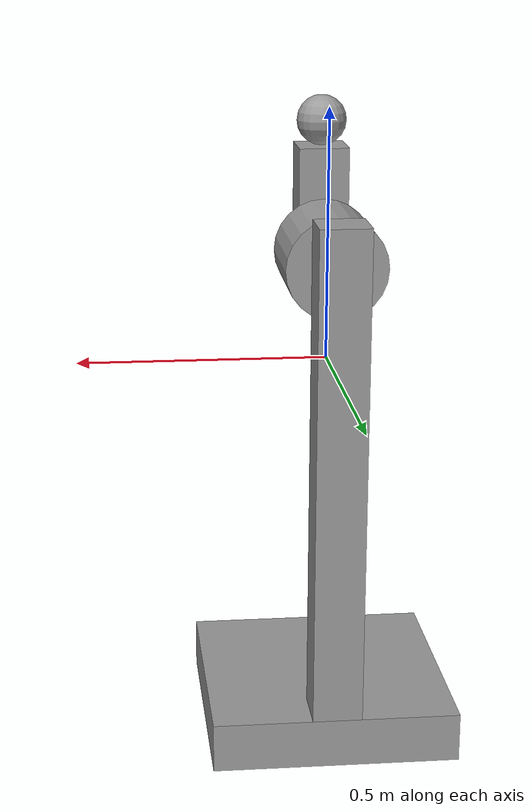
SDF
<?xml version='1.0'?>
<sdf version='1.6'>
  <model name='my_manipulator'>
    <link name='link_6'>
      <pose frame=''>0 0.19001 -0.18999 0 -0 0</pose>
      <inertial>
        <mass>1</mass>
        <inertia>
          <ixx>0.166667</ixx>
          <ixy>0</ixy>
          <ixz>0</ixz>
          <iyy>0.166667</iyy>
          <iyz>0</iyz>
          <izz>0.166667</izz>
        </inertia>
        <pose frame=''>0 0 0 0 -0 0</pose>
      </inertial>
      <gravity>1</gravity>
      <self_collide>0</self_collide>
      <kinematic>0</kinematic>
      <visual name='visual'>
        <pose frame=''>0 0 0 0 -0 0</pose>
        <geometry>
          <box>
            <size>0.1 0.1 1</size>
          </box>
        </geometry>
        <material>
          <lighting>1</lighting>
          <script>
            <uri>file://media/materials/scripts/gazebo.material</uri>
            <name>Gazebo/Grey</name>
          </script>
          <ambient>0.3 0.3 0.3 1</ambient>
          <diffuse>0.7 0.7 0.7 1</diffuse>
          <specular>0.01 0.01 0.01 1</specular>
          <emissive>0 0 0 1</emissive>
          <shader type='vertex'>
            <normal_map>__default__</normal_map>
          </shader>
        </material>
        <cast_shadows>1</cast_shadows>
        <transparency>0</transparency>
      </visual>
      <visual name='ModelPreview_3::link_6::visual_1'>
        <pose frame=''>0 0 0 0 -0 0</pose>
        <geometry>
          <box>
            <size>0.1 0.1 1</size>
          </box>
        </geometry>
        <material>
          <lighting>1</lighting>
          <script>
            <uri>file://media/materials/scripts/gazebo.material</uri>
            <name>Gazebo/Grey</name>
          </script>
          <ambient>0.3 0.3 0.3 1</ambient>
          <diffuse>0.7 0.7 0.7 1</diffuse>
          <specular>0.01 0.01 0.01 1</specular>
          <emissive>0 0 0 1</emissive>
          <shader type='vertex'>
            <normal_map>__default__</normal_map>
          </shader>
        </material>
        <cast_shadows>1</cast_shadows>
        <transparency>0</transparency>
      </visual>
      <collision name='collision'>
        <laser_retro>0</laser_retro>
        <max_contacts>10</max_contacts>
        <pose frame=''>0 0 0 0 -0 0</pose>
        <geometry>
          <box>
            <size>0.1 0.1 1</size>
          </box>
        </geometry>
        <surface>
          <friction>
            <ode>
              <mu>1</mu>
              <mu2>1</mu2>
              <fdir1>0 0 0</fdir1>
              <slip1>0</slip1>
              <slip2>0</slip2>
            </ode>
            <torsional>
              <coefficient>1</coefficient>
              <patch_radius>0</patch_radius>
              <surface_radius>0</surface_radius>
              <use_patch_radius>1</use_patch_radius>
              <ode>
                <slip>0</slip>
              </ode>
            </torsional>
          </friction>
          <bounce>
            <restitution_coefficient>0</restitution_coefficient>
            <threshold>1e+06</threshold>
          </bounce>
          <contact>
            <collide_without_contact>0</collide_without_contact>
            <collide_without_contact_bitmask>1</collide_without_contact_bitmask>
            <collide_bitmask>1</collide_bitmask>
            <ode>
              <soft_cfm>0</soft_cfm>
              <soft_erp>0.2</soft_erp>
              <kp>1e+13</kp>
              <kd>1</kd>
              <max_vel>0.01</max_vel>
              <min_depth>0</min_depth>
            </ode>
            <bullet>
              <split_impulse>1</split_impulse>
              <split_impulse_penetration_threshold>-0.01</split_impulse_penetration_threshold>
              <soft_cfm>0</soft_cfm>
              <soft_erp>0.2</soft_erp>
              <kp>1e+13</kp>
              <kd>1</kd>
            </bullet>
          </contact>
        </surface>
      </collision>
    </link>
    <link name='link_6_clone'>
      <pose frame=''>0 -0.11001 0.259991 0 -0 0</pose>
      <inertial>
        <mass>1</mass>
        <inertia>
          <ixx>0.166667</ixx>
          <ixy>0</ixy>
          <ixz>0</ixz>
          <iyy>0.166667</iyy>
          <iyz>0</iyz>
          <izz>0.166667</izz>
        </inertia>
        <pose frame=''>0 0 0 0 -0 0</pose>
      </inertial>
      <self_collide>0</self_collide>
      <kinematic>0</kinematic>
      <gravity>1</gravity>
      <visual name='visual'>
        <pose frame=''>0 0 0 0 -0 0</pose>
        <geometry>
          <box>
            <size>0.1 0.1 0.3</size>
          </box>
        </geometry>
        <material>
          <lighting>1</lighting>
          <script>
            <uri>file://media/materials/scripts/gazebo.material</uri>
            <name>Gazebo/Grey</name>
          </script>
          <ambient>0.3 0.3 0.3 1</ambient>
          <diffuse>0.7 0.7 0.7 1</diffuse>
          <specular>0.01 0.01 0.01 1</specular>
          <emissive>0 0 0 1</emissive>
          <shader type='vertex'>
            <normal_map>__default__</normal_map>
          </shader>
        </material>
        <cast_shadows>1</cast_shadows>
        <transparency>0</transparency>
      </visual>
      <collision name='collision'>
        <laser_retro>0</laser_retro>
        <max_contacts>10</max_contacts>
        <pose frame=''>0 0 0 0 -0 0</pose>
        <geometry>
          <box>
            <size>0.1 0.1 0.3</size>
          </box>
        </geometry>
        <surface>
          <friction>
            <ode>
              <mu>1</mu>
              <mu2>1</mu2>
              <fdir1>0 0 0</fdir1>
              <slip1>0</slip1>
              <slip2>0</slip2>
            </ode>
            <torsional>
              <coefficient>1</coefficient>
              <patch_radius>0</patch_radius>
              <surface_radius>0</surface_radius>
              <use_patch_radius>1</use_patch_radius>
              <ode>
                <slip>0</slip>
              </ode>
            </torsional>
          </friction>
          <bounce>
            <restitution_coefficient>0</restitution_coefficient>
            <threshold>1e+06</threshold>
          </bounce>
          <contact>
            <collide_without_contact>0</collide_without_contact>
            <collide_without_contact_bitmask>1</collide_without_contact_bitmask>
            <collide_bitmask>1</collide_bitmask>
            <ode>
              <soft_cfm>0</soft_cfm>
              <soft_erp>0.2</soft_erp>
              <kp>1e+13</kp>
              <kd>1</kd>
              <max_vel>0.01</max_vel>
              <min_depth>0</min_depth>
            </ode>
            <bullet>
              <split_impulse>1</split_impulse>
              <split_impulse_penetration_threshold>-0.01</split_impulse_penetration_threshold>
              <soft_cfm>0</soft_cfm>
              <soft_erp>0.2</soft_erp>
              <kp>1e+13</kp>
              <kd>1</kd>
            </bullet>
          </contact>
        </surface>
      </collision>
    </link>
    <link name='link_7'>
      <pose frame=''>0 -0.00999 -0.73999 0 -0 0</pose>
      <inertial>
        <mass>1</mass>
        <inertia>
          <ixx>0.166667</ixx>
          <ixy>0</ixy>
          <ixz>0</ixz>
          <iyy>0.166667</iyy>
          <iyz>0</iyz>
          <izz>0.166667</izz>
        </inertia>
        <pose frame=''>0 0 0 0 -0 0</pose>
      </inertial>
      <gravity>1</gravity>
      <self_collide>0</self_collide>
      <kinematic>0</kinematic>
      <visual name='visual'>
        <pose frame=''>0 0 0 0 -0 0</pose>
        <geometry>
          <box>
            <size>0.5 0.5 0.1</size>
          </box>
        </geometry>
        <material>
          <lighting>1</lighting>
          <script>
            <uri>file://media/materials/scripts/gazebo.material</uri>
            <name>Gazebo/Grey</name>
          </script>
          <ambient>0.3 0.3 0.3 1</ambient>
          <diffuse>0.7 0.7 0.7 1</diffuse>
          <specular>0.01 0.01 0.01 1</specular>
          <emissive>0 0 0 1</emissive>
          <shader type='vertex'>
            <normal_map>__default__</normal_map>
          </shader>
        </material>
        <cast_shadows>1</cast_shadows>
        <transparency>0</transparency>
      </visual>
      <collision name='collision'>
        <laser_retro>0</laser_retro>
        <max_contacts>10</max_contacts>
        <pose frame=''>0 0 0 0 -0 0</pose>
        <geometry>
          <box>
            <size>0.5 0.5 0.1</size>
          </box>
        </geometry>
        <surface>
          <friction>
            <ode>
              <mu>1</mu>
              <mu2>1</mu2>
              <fdir1>0 0 0</fdir1>
              <slip1>0</slip1>
              <slip2>0</slip2>
            </ode>
            <torsional>
              <coefficient>1</coefficient>
              <patch_radius>0</patch_radius>
              <surface_radius>0</surface_radius>
              <use_patch_radius>1</use_patch_radius>
              <ode>
                <slip>0</slip>
              </ode>
            </torsional>
          </friction>
          <bounce>
            <restitution_coefficient>0</restitution_coefficient>
            <threshold>1e+06</threshold>
          </bounce>
          <contact>
            <collide_without_contact>0</collide_without_contact>
            <collide_without_contact_bitmask>1</collide_without_contact_bitmask>
            <collide_bitmask>1</collide_bitmask>
            <ode>
              <soft_cfm>0</soft_cfm>
              <soft_erp>0.2</soft_erp>
              <kp>1e+13</kp>
              <kd>1</kd>
              <max_vel>0.01</max_vel>
              <min_depth>0</min_depth>
            </ode>
            <bullet>
              <split_impulse>1</split_impulse>
              <split_impulse_penetration_threshold>-0.01</split_impulse_penetration_threshold>
              <soft_cfm>0</soft_cfm>
              <soft_erp>0.2</soft_erp>
              <kp>1e+13</kp>
              <kd>1</kd>
            </bullet>
          </contact>
        </surface>
      </collision>
    </link>
    <link name='link_8'>
      <pose frame=''>0 0.04 0.21 -1.5707 0 0</pose>
      <inertial>
        <mass>1</mass>
        <inertia>
          <ixx>0.145833</ixx>
          <ixy>0</ixy>
          <ixz>0</ixz>
          <iyy>0.145833</iyy>
          <iyz>0</iyz>
          <izz>0.125</izz>
        </inertia>
        <pose frame=''>0 0 0 0 -0 0</pose>
      </inertial>
      <gravity>1</gravity>
      <self_collide>0</self_collide>
      <kinematic>0</kinematic>
      <visual name='visual'>
        <pose frame=''>0 0 0 0 -0 0</pose>
        <geometry>
          <cylinder>
            <radius>0.1</radius>
            <length>0.2</length>
          </cylinder>
        </geometry>
        <material>
          <lighting>1</lighting>
          <script>
            <uri>file://media/materials/scripts/gazebo.material</uri>
            <name>Gazebo/Grey</name>
          </script>
          <ambient>0.3 0.3 0.3 1</ambient>
          <diffuse>0.7 0.7 0.7 1</diffuse>
          <specular>0.01 0.01 0.01 1</specular>
          <emissive>0 0 0 1</emissive>
          <shader type='vertex'>
            <normal_map>__default__</normal_map>
          </shader>
        </material>
        <cast_shadows>1</cast_shadows>
        <transparency>0</transparency>
      </visual>
      <collision name='collision'>
        <laser_retro>0</laser_retro>
        <max_contacts>10</max_contacts>
        <pose frame=''>0 0 0 0 -0 0</pose>
        <geometry>
          <cylinder>
            <radius>0.1</radius>
            <length>0.2</length>
          </cylinder>
        </geometry>
        <surface>
          <friction>
            <ode>
              <mu>1</mu>
              <mu2>1</mu2>
              <fdir1>0 0 0</fdir1>
              <slip1>0</slip1>
              <slip2>0</slip2>
            </ode>
            <torsional>
              <coefficient>1</coefficient>
              <patch_radius>0</patch_radius>
              <surface_radius>0</surface_radius>
              <use_patch_radius>1</use_patch_radius>
              <ode>
                <slip>0</slip>
              </ode>
            </torsional>
          </friction>
          <bounce>
            <restitution_coefficient>0</restitution_coefficient>
            <threshold>1e+06</threshold>
          </bounce>
          <contact>
            <collide_without_contact>0</collide_without_contact>
            <collide_without_contact_bitmask>1</collide_without_contact_bitmask>
            <collide_bitmask>1</collide_bitmask>
            <ode>
              <soft_cfm>0</soft_cfm>
              <soft_erp>0.2</soft_erp>
              <kp>1e+13</kp>
              <kd>1</kd>
              <max_vel>0.01</max_vel>
              <min_depth>0</min_depth>
            </ode>
            <bullet>
              <split_impulse>1</split_impulse>
              <split_impulse_penetration_threshold>-0.01</split_impulse_penetration_threshold>
              <soft_cfm>0</soft_cfm>
              <soft_erp>0.2</soft_erp>
              <kp>1e+13</kp>
              <kd>1</kd>
            </bullet>
          </contact>
        </surface>
      </collision>
    </link>
    <link name='link_9'>
      <pose frame=''>0 -0.11001 0.459991 0 -0 0</pose>
      <inertial>
        <mass>1</mass>
        <inertia>
          <ixx>0.1</ixx>
          <ixy>0</ixy>
          <ixz>0</ixz>
          <iyy>0.1</iyy>
          <iyz>0</iyz>
          <izz>0.1</izz>
        </inertia>
        <pose frame=''>0 0 0 0 -0 0</pose>
      </inertial>
      <gravity>1</gravity>
      <self_collide>0</self_collide>
      <kinematic>0</kinematic>
      <visual name='visual'>
        <pose frame=''>0 0 0 0 -0 0</pose>
        <geometry>
          <sphere>
            <radius>0.05</radius>
          </sphere>
        </geometry>
        <material>
          <lighting>1</lighting>
          <script>
            <uri>file://media/materials/scripts/gazebo.material</uri>
            <name>Gazebo/Grey</name>
          </script>
          <ambient>0.3 0.3 0.3 1</ambient>
          <diffuse>0.7 0.7 0.7 1</diffuse>
          <specular>0.01 0.01 0.01 1</specular>
          <emissive>0 0 0 1</emissive>
          <shader type='vertex'>
            <normal_map>__default__</normal_map>
          </shader>
        </material>
        <cast_shadows>1</cast_shadows>
        <transparency>0</transparency>
      </visual>
      <collision name='collision'>
        <laser_retro>0</laser_retro>
        <max_contacts>10</max_contacts>
        <pose frame=''>0 0 0 0 -0 0</pose>
        <geometry>
          <sphere>
            <radius>0.05</radius>
          </sphere>
        </geometry>
        <surface>
          <friction>
            <ode>
              <mu>1</mu>
              <mu2>1</mu2>
              <fdir1>0 0 0</fdir1>
              <slip1>0</slip1>
              <slip2>0</slip2>
            </ode>
            <torsional>
              <coefficient>1</coefficient>
              <patch_radius>0</patch_radius>
              <surface_radius>0</surface_radius>
              <use_patch_radius>1</use_patch_radius>
              <ode>
                <slip>0</slip>
              </ode>
            </torsional>
          </friction>
          <bounce>
            <restitution_coefficient>0</restitution_coefficient>
            <threshold>1e+06</threshold>
          </bounce>
          <contact>
            <collide_without_contact>0</collide_without_contact>
            <collide_without_contact_bitmask>1</collide_without_contact_bitmask>
            <collide_bitmask>1</collide_bitmask>
            <ode>
              <soft_cfm>0</soft_cfm>
              <soft_erp>0.2</soft_erp>
              <kp>1e+13</kp>
              <kd>1</kd>
              <max_vel>0.01</max_vel>
              <min_depth>0</min_depth>
            </ode>
            <bullet>
              <split_impulse>1</split_impulse>
              <split_impulse_penetration_threshold>-0.01</split_impulse_penetration_threshold>
              <soft_cfm>0</soft_cfm>
              <soft_erp>0.2</soft_erp>
              <kp>1e+13</kp>
              <kd>1</kd>
            </bullet>
          </contact>
        </surface>
      </collision>
    </link>
    <joint name='link_6_JOINT_9' type='revolute'>
      <parent>link_6</parent>
      <child>link_8</child>
      <pose frame=''>0 0 0 0 -0 0</pose>
      <axis>
        <xyz>0 0 -1</xyz>
        <use_parent_model_frame>0</use_parent_model_frame>
        <limit>
          <lower>-1.79769e+308</lower>
          <upper>1.79769e+308</upper>
          <effort>-1</effort>
          <velocity>-1</velocity>
        </limit>
        <dynamics>
          <spring_reference>0</spring_reference>
          <spring_stiffness>0</spring_stiffness>
          <damping>0</damping>
          <friction>0</friction>
        </dynamics>
      </axis>
      <physics>
        <ode>
          <limit>
            <cfm>0</cfm>
            <erp>0.2</erp>
          </limit>
          <suspension>
            <cfm>0</cfm>
            <erp>0.2</erp>
          </suspension>
        </ode>
      </physics>
    </joint>
    <joint name='link_6_clone_JOINT_11' type='fixed'>
      <parent>link_6_clone</parent>
      <child>link_9</child>
      <pose frame=''>0 0 0 0 -0 0</pose>
      <physics>
        <ode>
          <limit>
            <cfm>0</cfm>
            <erp>0.2</erp>
          </limit>
          <suspension>
            <cfm>0</cfm>
            <erp>0.2</erp>
          </suspension>
        </ode>
      </physics>
    </joint>
    <joint name='link_7_JOINT_8' type='fixed'>
      <parent>link_7</parent>
      <child>link_6</child>
      <pose frame=''>0 0 0 0 -0 0</pose>
      <physics>
        <ode>
          <limit>
            <cfm>0</cfm>
            <erp>0.2</erp>
          </limit>
          <suspension>
            <cfm>0</cfm>
            <erp>0.2</erp>
          </suspension>
        </ode>
      </physics>
    </joint>
    <joint name='link_8_JOINT_10' type='fixed'>
      <parent>link_8</parent>
      <child>link_6_clone</child>
      <pose frame=''>0 0 0 0 -0 0</pose>
      <physics>
        <ode>
          <limit>
            <cfm>0</cfm>
            <erp>0.2</erp>
          </limit>
          <suspension>
            <cfm>0</cfm>
            <erp>0.2</erp>
          </suspension>
        </ode>
      </physics>
    </joint>
    <static>0</static>
    <allow_auto_disable>1</allow_auto_disable>
  </model>
</sdf>
